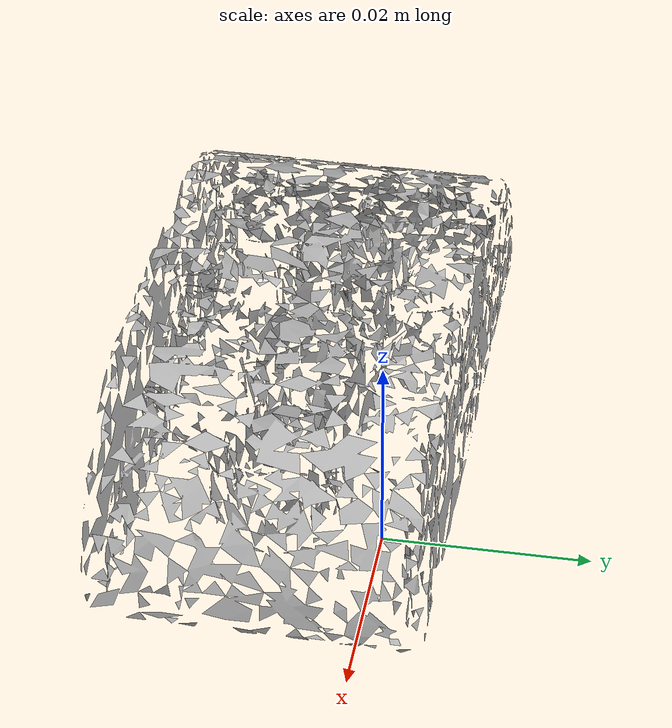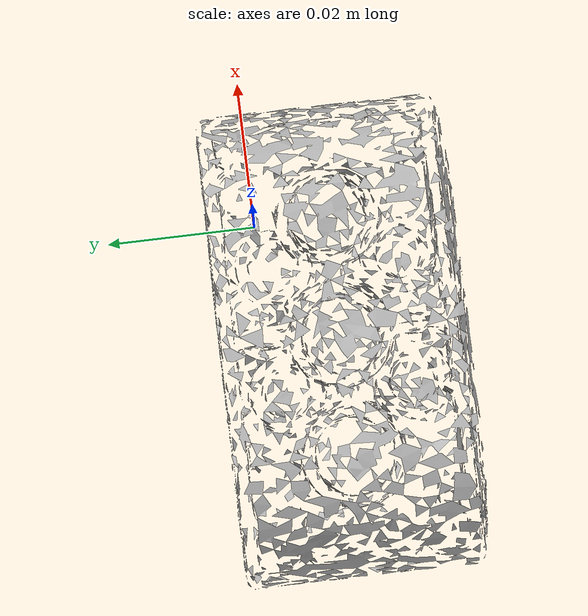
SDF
<?xml version='1.0'?>
<sdf version="1.4">
  <model name="a_lego_duplo">
    <static>false</static>
    <link name="link">
      <inertial>
        <pose>-0.01643867601045112 -0.009535832647545055 0.01214668664168984 -0.9804646714852003 -1.5656577611750393 0.9728745595586255</pose>
        <mass>1.811737478000783e-05</mass>
        <inertia>
          <ixx>6.369074670629607e-09</ixx>
          <ixy>-1.253894965353446e-25</ixy>
          <ixz>-2.140652866730558e-27</ixz>
          <iyy>5.07601234105467e-09</iyy>
          <iyz>-1.717549996553695e-26</iyz>
          <izz>2.2743845219972276e-09</izz>
        </inertia>
      </inertial>
      <collision name="collision">
        <geometry>
          <mesh>
            <!-- Use a downsampled mesh for collisions -->
            <uri>model://073-a_lego_duplo/downsampled.obj</uri>
	        </mesh>
        </geometry>
        <surface>
      </surface>
      </collision>
      <visual name="visual">
        <geometry>
          <mesh>
            <uri>model://073-a_lego_duplo/google_16k/textured.obj</uri>
	        </mesh>
        </geometry>
        <material>
          <script>
            <uri>model://073-a_lego_duplo/a_lego_duplo.material</uri>
            <name>a_lego_duplo</name>
          </script>
        </material>
      </visual>
    </link>
  </model>
</sdf>
